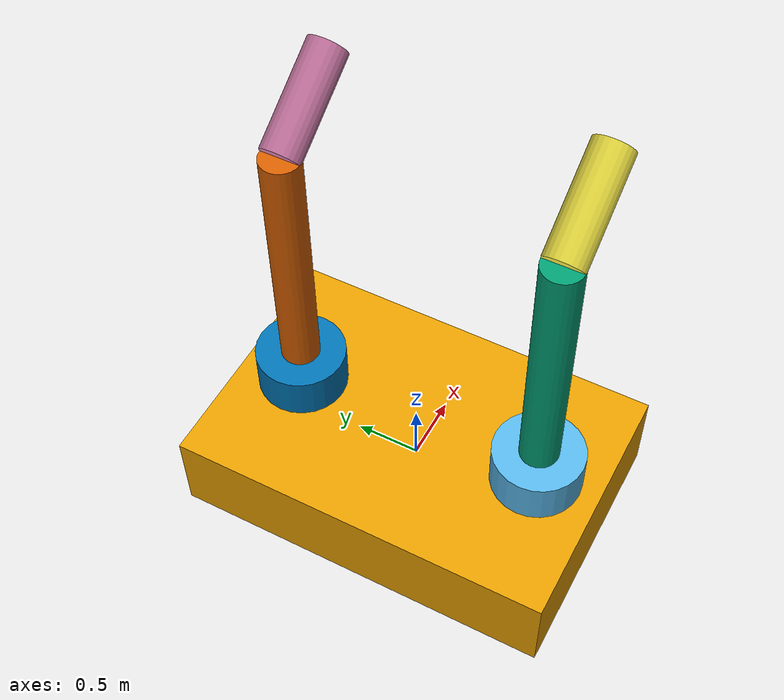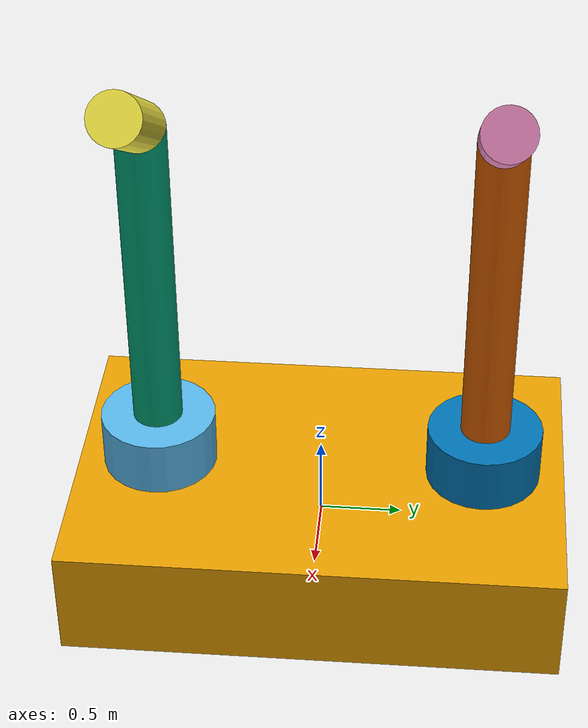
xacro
<?xml version="1.0" ?>

<robot name="mrm" xmlns:xacro="http://www.ros.org/wiki/xacro">

    <link name="base_link">
        <visual>
            <origin rpy="0 0 0" xyz="0 0 0"/>
            <geometry>
                <box size="2 3 0.7"/>
            </geometry>
        </visual>
    </link>

    <joint name="Waist1" type="revolute">
        <axis xyz="0 0 1" />
        <limit effort="1000.0" lower="-3.60" upper="0.45" velocity="0.5" />
        <origin rpy="0 0 0" xyz="0 -1 0.5"/>
        <parent link="base_link"/>
        <child link="link1"/>
    </joint>

    <link name="link1">
        <visual>
            <origin rpy="0 0 0" xyz="0 0 0"/>
            <geometry>
                <cylinder radius="0.35" length="0.4"/>
            </geometry>
        </visual>
    </link>

    <joint name="Shoulder1" type="revolute">
        <axis xyz="0 1 0" />
        <limit effort="1000.0" lower="-0.62" upper="1.56" velocity="0.5" />
        <origin rpy="0 0 0" xyz="0 0 0.4"/>
        <parent link="link1"/>
        <child link="link2"/>
    </joint>

    <link name="link2">
        <visual>
            <origin rpy="0 0 0" xyz="0 0 0.8"/>
            <geometry>
                <cylinder radius="0.15" length="2.0"/>
            </geometry>
        </visual>
    </link>
     <joint name="Elbow1" type="revolute">
        <axis xyz="0 1 0" />
        <limit effort="1000.0" lower="-1.04" upper="0.54" velocity="0.5" />
        <origin rpy="0 1 0" xyz="0 0 1.8"/>
        <parent link="link2"/>
        <child link="link3"/>
    </joint>

    <link name="link3">
        <visual>
            <origin rpy="0 0 0" xyz="0 0 0.4"/>
            <geometry>
                <cylinder radius="0.15" length="0.8"/>
            </geometry>
        </visual>
    </link>

    <joint name="Waist2" type="revolute">
        <axis xyz="0 0 1" />
        <limit effort="1000.0" lower="-0.45" upper="3.60" velocity="0.5" />
        <origin rpy="0 0 0" xyz="0 1 0.5"/>
        <parent link="base_link"/>
        <child link="link12"/>
    </joint>

<link name="link12">
        <visual>
            <origin rpy="0 0 0" xyz="0 0 0"/>
            <geometry>
                <cylinder radius="0.35" length="0.4"/>
            </geometry>
        </visual>
    </link>

 <joint name="Shoulder2" type="revolute">
        <axis xyz="0 1 0" />
        <limit effort="1000.0" lower="-0.62" upper="1.56" velocity="0.5" />
        <origin rpy="0 0 0" xyz="0 0 0.4"/>
        <parent link="link12"/>
        <child link="link22"/>
    </joint>

    <link name="link22">
        <visual>
            <origin rpy="0 0 0" xyz="0 0 0.8"/>
            <geometry>
                <cylinder radius="0.15" length="2.0"/>
            </geometry>
        </visual>
    </link>
     <joint name="Elbow2" type="revolute">
        <axis xyz="0 1 0" />
        <limit effort="1000.0" lower="-1.04" upper="0.54" velocity="0.5" />
        <origin rpy="0 1 0" xyz="0 0 1.8"/>
        <parent link="link22"/>
        <child link="link32"/>
    </joint>

    <link name="link32">
        <visual>
            <origin rpy="0 0 0" xyz="0 0 0.4"/>
            <geometry>
                <cylinder radius="0.15" length="0.8"/>
            </geometry>
        </visual>
    </link>

</robot>
